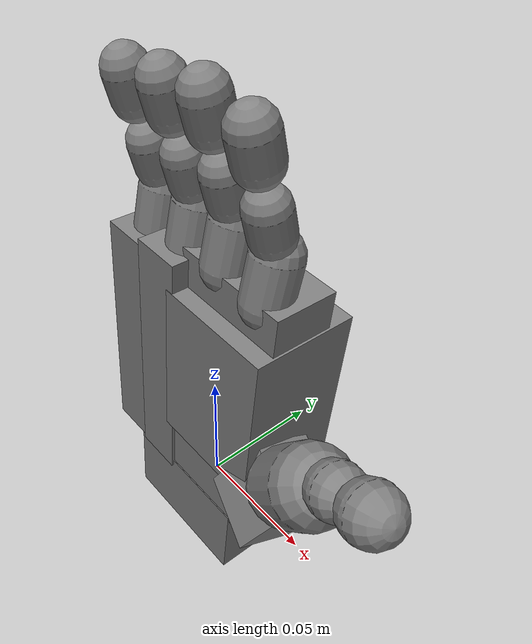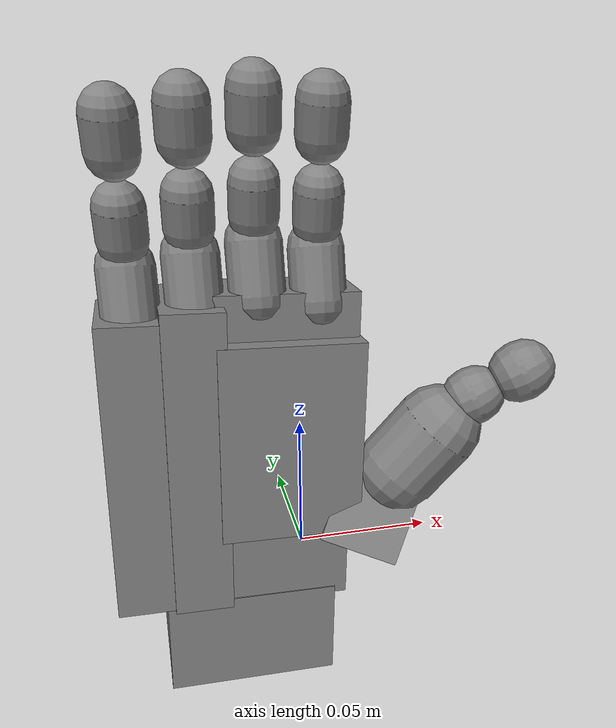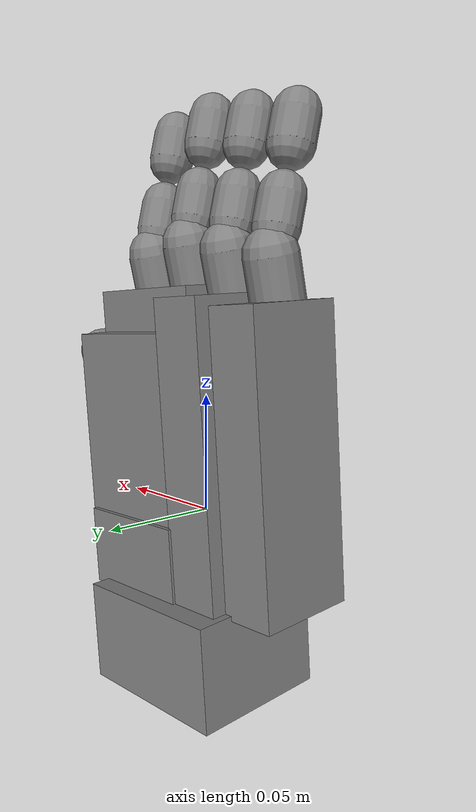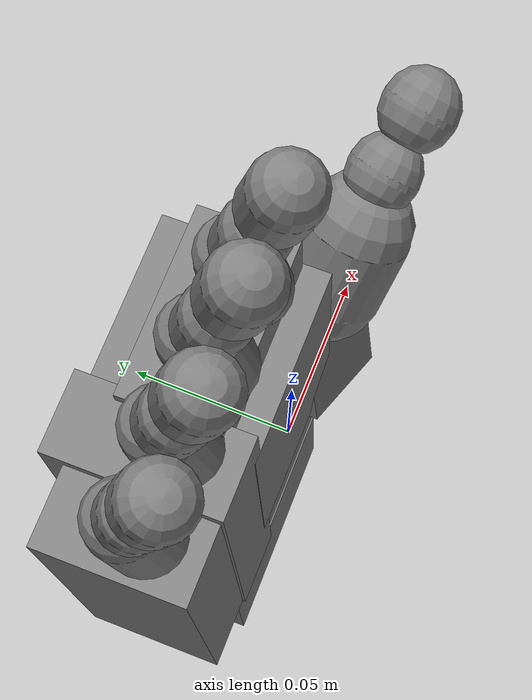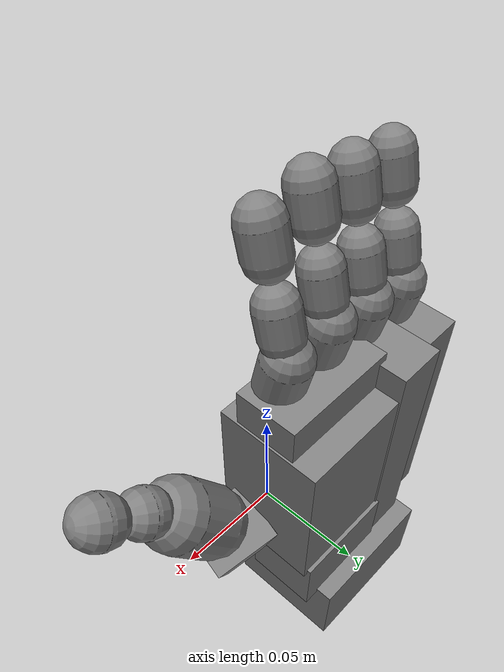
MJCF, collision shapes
<mujoco model="Lingxi_Hand_V2_Right_CanExactPose">
  <compiler angle="radian" meshdir="/home/ll/SRTP/Aero-Hand/handinformation/URDF/右/qbr/meshes/" />
  <option timestep="0.01" integrator="Euler" iterations="20" ls_iterations="20">
    <flag eulerdamp="disable" />
  </option>
  <custom>
    <numeric data="80" name="max_contact_points" />
    <numeric data="50" name="max_geom_pairs" />
  </custom>
  <asset>
    <material name="black" rgba="0.2 0.2 0.2 1" />
    <material name="gray" rgba="0.5 0.5 0.5 1" />
    <material name="white" rgba="0.529 0.549 0.549 1" />
    <material name="rubber" rgba="0.3 0.3 0.3 1" />
    <mesh name="v2_palm" file="v2_base_link.STL" />
    <mesh name="v2_thumb_base" file="link1.STL" />
    <mesh name="v2_thumb_mid" file="link2.STL" />
    <mesh name="v2_thumb_tip" file="link3.STL" />
    <mesh name="v2_index_proximal" file="link4.STL" />
    <mesh name="v2_index_distal" file="link5.STL" />
    <mesh name="v2_middle_proximal" file="link6.STL" />
    <mesh name="v2_middle_distal" file="link7.STL" />
    <mesh name="v2_ring_proximal" file="link8.STL" />
    <mesh name="v2_ring_distal" file="link9.STL" />
    <mesh name="v2_pinky_proximal" file="link10.STL" />
    <mesh name="v2_pinky_distal" file="link11.STL" />
  </asset>
  <default>
    <default class="v2_hand">
      <site group="4" />
      <default class="visual">
        <geom group="2" type="mesh" contype="0" conaffinity="0" density="0" material="white" />
      </default>
      <joint damping="0.02" armature="0.001559127" frictionloss="0.02" />
      <position kp="3.0" />
      <default class="mcp">
        <joint range="0 1.3963" damping="0.1" />
        <position ctrlrange="0 1.40" />
      </default>
      <default class="pip">
        <joint range="0 1.2915" damping="0.05" />
      </default>
      <default class="thumb_cmc">
        <joint range="0 1.3788" damping="0.1" />
        <position ctrlrange="0 1.38" />
      </default>
      <!-- 拇指 flex 代理遵循 handinformation 中的两段弯曲：
           被动段约 30°，主动段约 45°。 -->
      <default class="thumb_flex">
        <joint range="0 0.5236" damping="0.05" />
      </default>
      <default class="thumb_mcp">
        <joint range="0 0.7854" damping="0.05" />
        <position ctrlrange="0 0.79" />
      </default>
    </default>
  </default>
  <contact>
    <exclude body1="palm" body2="right_index_proximal" />
    <exclude body1="palm" body2="right_middle_proximal" />
    <exclude body1="palm" body2="right_ring_proximal" />
    <exclude body1="palm" body2="right_pinky_proximal" />
    <exclude body1="palm" body2="right_thumb_base" />
    <exclude body1="palm" body2="right_thumb_mid" />
    <exclude body1="palm" body2="right_ring_distal" />
    <exclude body1="palm" body2="right_pinky_distal" />
    <exclude body1="v2_mount" body2="right_index_proximal" />
    <exclude body1="v2_mount" body2="right_middle_proximal" />
    <exclude body1="v2_mount" body2="right_ring_proximal" />
    <exclude body1="v2_mount" body2="right_pinky_proximal" />
    <exclude body1="v2_mount" body2="right_thumb_base" />
    <exclude body1="right_index_proximal" body2="right_index_distal" />
    <exclude body1="right_middle_proximal" body2="right_middle_distal" />
    <exclude body1="right_ring_proximal" body2="right_ring_distal" />
    <exclude body1="right_pinky_proximal" body2="right_pinky_distal" />
    <exclude body1="right_thumb_base" body2="right_thumb_mid" />
    <exclude body1="right_thumb_mid" body2="right_thumb_tip" />
    <exclude body1="right_index_proximal" body2="right_middle_proximal" />
    <exclude body1="right_index_distal" body2="right_middle_distal" />
    <exclude body1="right_middle_proximal" body2="right_ring_proximal" />
    <exclude body1="right_middle_distal" body2="right_ring_distal" />
    <exclude body1="right_ring_proximal" body2="right_pinky_proximal" />
    <exclude body1="right_ring_distal" body2="right_pinky_distal" />
    <exclude body1="right_index_proximal" body2="right_middle_distal" />
    <exclude body1="right_middle_proximal" body2="right_ring_distal" />
    <exclude body1="right_ring_proximal" body2="right_pinky_distal" />
    <exclude body1="right_middle_proximal" body2="right_index_distal" />
    <exclude body1="right_ring_proximal" body2="right_middle_distal" />
    <exclude body1="right_pinky_proximal" body2="right_ring_distal" />
  </contact>
  <worldbody>
    <body name="v2_mount" pos="-0.020 0.020 -0.055" euler="1.5708 0 0" childclass="v2_hand">
      <body name="palm" pos="0 0 0">
        <geom type="mesh" mesh="v2_palm" class="visual" />
        <geom name="palm_capsule_000" type="box" size="0.019545 0.032818 0.027657" pos="-0.001294 0.013306 -0.002059" quat="-0.021394 -0.694705 0.718833 -0.014360" group="3" friction="1.25" solref="0.008 1.1" solimp="0.95 0.995 0.0005" />
        <geom name="palm_capsule_001" type="box" size="0.055995 0.012246 0.020313" pos="-0.037477 0.088524 0.002150" quat="-0.021394 -0.694705 0.718833 -0.014360" group="3" friction="1.25" solref="0.008 1.1" solimp="0.95 0.995 0.0005" />
        <geom name="palm_capsule_002" type="box" size="0.015020 0.023038 0.009075" pos="0.014322 0.045467 0.014280" quat="-0.021394 -0.694705 0.718833 -0.014360" group="3" friction="1.25" solref="0.008 1.1" solimp="0.95 0.995 0.0005" />
        <geom name="palm_capsule_003" type="box" size="0.058447 0.011058 0.023732" pos="-0.017454 0.089066 -0.000677" quat="-0.021394 -0.694705 0.718833 -0.014360" group="3" friction="1.25" solref="0.008 1.1" solimp="0.95 0.995 0.0005" />
        <geom name="palm_capsule_004" type="box" size="0.015590 0.024517 0.016455" pos="0.015471 0.045279 -0.007175" quat="-0.021394 -0.694705 0.718833 -0.014360" group="3" friction="1.25" solref="0.008 1.1" solimp="0.95 0.995 0.0005" />
        <geom name="palm_capsule_005" type="box" size="0.001643 0.008443 0.008259" pos="0.017799 0.006857 -0.019307" quat="-0.021394 -0.694705 0.718833 -0.014360" group="3" friction="1.25" solref="0.008 1.1" solimp="0.95 0.995 0.0005" />
        <geom name="palm_capsule_006" type="box" size="0.037733 0.026708 0.023460" pos="0.016879 0.095803 -0.000931" quat="-0.021394 -0.694705 0.718833 -0.014360" group="3" friction="1.25" solref="0.008 1.1" solimp="0.95 0.995 0.0005" />
        <geom name="palm_capsule_007" type="box" size="0.013627 0.026278 0.013850" pos="0.017772 0.136552 -0.001137" quat="-0.021394 -0.694705 0.718833 -0.014360" group="3" friction="1.25" solref="0.008 1.1" solimp="0.95 0.995 0.0005" />
        <site name="grasp_site" pos="0 0.085 -0.020" group="4" />
        <body name="right_index_proximal" pos="0.034276 0.1374 0.001">
          <inertial pos="-0.003657 0.0162 0.000274" mass="0.0686" diaginertia="7.49e-06 7.33e-06 2.82e-06" />
          <joint name="right_index_mcp" axis="1 0 0" class="mcp" />
          <geom type="mesh" mesh="v2_index_proximal" class="visual" />
          <geom name="right_index_proximal_capsule_000" type="capsule" group="3" friction="1.5" solref="0.005 1.0" solimp="0.97 0.999 0.0001" fromto="-0.003733 0.008071 0.003736 -0.003793 0.026509 -0.000839" size="0.010229" />
          <body name="right_index_distal" pos="0.00084336 0.031988 -0.0026473">
            <inertial pos="-0.00450 0.0246 0.00927" mass="0.0755" diaginertia="1.58e-05 1.57e-05 2.47e-06" />
            <joint name="right_index_pip" axis="1 0 0" class="pip" />
            <geom type="mesh" mesh="v2_index_distal" class="visual" />
            <geom name="right_index_distal_capsule_000" type="capsule" group="3" friction="1.5" solref="0.005 1.0" solimp="0.97 0.999 0.0001" fromto="-0.004533 0.003643 0.004505 -0.004547 0.015148 0.007211" size="0.008789" />
            <geom name="right_index_distal_capsule_001" type="capsule" group="3" friction="1.5" solref="0.005 1.0" solimp="0.97 0.999 0.0001" fromto="-0.004569 0.032374 0.011263 -0.004584 0.043669 0.013920" size="0.008894" />
            <site name="if_tip" pos="-0.004 0.052 0.005" group="4" />
            <site name="if_tip_t00" pos="-0.007 0.042 0.005" size="0.003" />
            <site name="if_tip_t01" pos="-0.005 0.042 0.005" size="0.003" />
            <site name="if_tip_t02" pos="-0.003 0.042 0.005" size="0.003" />
            <site name="if_tip_t03" pos="-0.001 0.042 0.005" size="0.003" />
            <site name="if_tip_t04" pos="-0.007 0.045 0.005" size="0.003" />
            <site name="if_tip_t05" pos="-0.005 0.045 0.005" size="0.003" />
            <site name="if_tip_t06" pos="-0.003 0.045 0.005" size="0.003" />
            <site name="if_tip_t07" pos="-0.001 0.045 0.005" size="0.003" />
            <site name="if_tip_t08" pos="-0.007 0.048 0.005" size="0.003" />
            <site name="if_tip_t09" pos="-0.005 0.048 0.005" size="0.003" />
            <site name="if_tip_t10" pos="-0.003 0.048 0.005" size="0.003" />
            <site name="if_tip_t11" pos="-0.001 0.048 0.005" size="0.003" />
            <site name="if_tip_t12" pos="-0.007 0.051 0.005" size="0.003" />
            <site name="if_tip_t13" pos="-0.005 0.051 0.005" size="0.003" />
            <site name="if_tip_t14" pos="-0.003 0.051 0.005" size="0.003" />
            <site name="if_tip_t15" pos="-0.001 0.051 0.005" size="0.003" />
          </body>
        </body>
        <body name="right_middle_proximal" pos="0.012276 0.14055 0.001">
          <inertial pos="-0.003657 0.0162 0.000274" mass="0.0686" diaginertia="7.49e-06 7.33e-06 2.82e-06" />
          <joint name="right_middle_mcp" axis="1 0 0" class="mcp" />
          <geom type="mesh" mesh="v2_middle_proximal" class="visual" />
          <geom name="right_middle_proximal_capsule_000" type="capsule" group="3" friction="1.5" solref="0.005 1.0" solimp="0.97 0.999 0.0001" fromto="-0.003733 0.008071 0.003736 -0.003793 0.026509 -0.000839" size="0.010229" />
          <body name="right_middle_distal" pos="0 0.02968 -0.0024563">
            <inertial pos="-0.00366 0.0269 0.00908" mass="0.0755" diaginertia="1.58e-05 1.57e-05 2.47e-06" />
            <joint name="right_middle_pip" axis="1 0 0" class="pip" />
            <geom type="mesh" mesh="v2_middle_distal" class="visual" />
            <geom name="right_middle_distal_capsule_000" type="capsule" group="3" friction="1.5" solref="0.005 1.0" solimp="0.97 0.999 0.0001" fromto="-0.003689 0.005951 0.004314 -0.003704 0.017455 0.007020" size="0.008789" />
            <geom name="right_middle_distal_capsule_001" type="capsule" group="3" friction="1.5" solref="0.005 1.0" solimp="0.97 0.999 0.0001" fromto="-0.003726 0.034682 0.011072 -0.003740 0.045977 0.013729" size="0.008894" />
            <site name="mf_tip" pos="-0.004 0.052 0.005" group="4" />
            <site name="mf_tip_t00" pos="-0.007 0.042 0.005" size="0.003" />
            <site name="mf_tip_t01" pos="-0.005 0.042 0.005" size="0.003" />
            <site name="mf_tip_t02" pos="-0.003 0.042 0.005" size="0.003" />
            <site name="mf_tip_t03" pos="-0.001 0.042 0.005" size="0.003" />
            <site name="mf_tip_t04" pos="-0.007 0.045 0.005" size="0.003" />
            <site name="mf_tip_t05" pos="-0.005 0.045 0.005" size="0.003" />
            <site name="mf_tip_t06" pos="-0.003 0.045 0.005" size="0.003" />
            <site name="mf_tip_t07" pos="-0.001 0.045 0.005" size="0.003" />
            <site name="mf_tip_t08" pos="-0.007 0.048 0.005" size="0.003" />
            <site name="mf_tip_t09" pos="-0.005 0.048 0.005" size="0.003" />
            <site name="mf_tip_t10" pos="-0.003 0.048 0.005" size="0.003" />
            <site name="mf_tip_t11" pos="-0.001 0.048 0.005" size="0.003" />
            <site name="mf_tip_t12" pos="-0.007 0.051 0.005" size="0.003" />
            <site name="mf_tip_t13" pos="-0.005 0.051 0.005" size="0.003" />
            <site name="mf_tip_t14" pos="-0.003 0.051 0.005" size="0.003" />
            <site name="mf_tip_t15" pos="-0.001 0.051 0.005" size="0.003" />
          </body>
        </body>
        <body name="right_ring_proximal" pos="-0.009724 0.1374 0.001">
          <inertial pos="-0.003657 0.0162 0.000274" mass="0.0686" diaginertia="7.49e-06 7.33e-06 2.82e-06" />
          <joint name="right_ring_mcp" axis="1 0 0" class="mcp" />
          <geom type="mesh" mesh="v2_ring_proximal" class="visual" />
          <geom name="right_ring_proximal_capsule_000" type="capsule" group="3" friction="1.5" solref="0.005 1.0" solimp="0.97 0.999 0.0001" fromto="-0.003733 0.008071 0.003736 -0.003793 0.026509 -0.000839" size="0.010229" />
          <body name="right_ring_distal" pos="0 0.02968 -0.0024563">
            <inertial pos="-0.00366 0.0269 0.00908" mass="0.0755" diaginertia="1.58e-05 1.57e-05 2.47e-06" />
            <joint name="right_ring_pip" axis="1 0 0" class="pip" />
            <geom type="mesh" mesh="v2_ring_distal" class="visual" />
            <geom name="right_ring_distal_capsule_000" type="capsule" group="3" friction="1.5" solref="0.005 1.0" solimp="0.97 0.999 0.0001" fromto="-0.003689 0.005951 0.004314 -0.003704 0.017455 0.007020" size="0.008789" />
            <geom name="right_ring_distal_capsule_001" type="capsule" group="3" friction="1.5" solref="0.005 1.0" solimp="0.97 0.999 0.0001" fromto="-0.003726 0.034682 0.011072 -0.003740 0.045977 0.013729" size="0.008894" />
            <site name="rf_tip" pos="-0.004 0.052 0.005" group="4" />
            <site name="rf_tip_t00" pos="-0.007 0.042 0.005" size="0.003" />
            <site name="rf_tip_t01" pos="-0.005 0.042 0.005" size="0.003" />
            <site name="rf_tip_t02" pos="-0.003 0.042 0.005" size="0.003" />
            <site name="rf_tip_t03" pos="-0.001 0.042 0.005" size="0.003" />
            <site name="rf_tip_t04" pos="-0.007 0.045 0.005" size="0.003" />
            <site name="rf_tip_t05" pos="-0.005 0.045 0.005" size="0.003" />
            <site name="rf_tip_t06" pos="-0.003 0.045 0.005" size="0.003" />
            <site name="rf_tip_t07" pos="-0.001 0.045 0.005" size="0.003" />
            <site name="rf_tip_t08" pos="-0.007 0.048 0.005" size="0.003" />
            <site name="rf_tip_t09" pos="-0.005 0.048 0.005" size="0.003" />
            <site name="rf_tip_t10" pos="-0.003 0.048 0.005" size="0.003" />
            <site name="rf_tip_t11" pos="-0.001 0.048 0.005" size="0.003" />
            <site name="rf_tip_t12" pos="-0.007 0.051 0.005" size="0.003" />
            <site name="rf_tip_t13" pos="-0.005 0.051 0.005" size="0.003" />
            <site name="rf_tip_t14" pos="-0.003 0.051 0.005" size="0.003" />
            <site name="rf_tip_t15" pos="-0.001 0.051 0.005" size="0.003" />
          </body>
        </body>
        <body name="right_pinky_proximal" pos="-0.031724 0.13417 0.001">
          <inertial pos="-0.003657 0.0162 0.000274" mass="0.0686" diaginertia="7.49e-06 7.33e-06 2.82e-06" />
          <joint name="right_pinky_mcp" axis="1 0 0" class="mcp" />
          <geom type="mesh" mesh="v2_pinky_proximal" class="visual" />
          <geom name="right_pinky_proximal_capsule_000" type="capsule" group="3" friction="1.5" solref="0.005 1.0" solimp="0.97 0.999 0.0001" fromto="-0.003733 0.008071 0.003736 -0.003793 0.026509 -0.000839" size="0.010229" />
          <body name="right_pinky_distal" pos="0.00084336 0.031988 -0.0026473">
            <inertial pos="-0.00450 0.0246 0.00927" mass="0.0755" diaginertia="1.58e-05 1.57e-05 2.47e-06" />
            <joint name="right_pinky_pip" axis="1 0 0" class="pip" />
            <geom type="mesh" mesh="v2_pinky_distal" class="visual" />
            <geom name="right_pinky_distal_capsule_000" type="capsule" group="3" friction="1.5" solref="0.005 1.0" solimp="0.97 0.999 0.0001" fromto="-0.004533 0.003643 0.004505 -0.004547 0.015148 0.007211" size="0.008789" />
            <geom name="right_pinky_distal_capsule_001" type="capsule" group="3" friction="1.5" solref="0.005 1.0" solimp="0.97 0.999 0.0001" fromto="-0.004569 0.032374 0.011263 -0.004584 0.043669 0.013920" size="0.008894" />
            <site name="pf_tip" pos="-0.004 0.052 0.005" group="4" />
            <site name="pf_tip_t00" pos="-0.007 0.042 0.005" size="0.003" />
            <site name="pf_tip_t01" pos="-0.005 0.042 0.005" size="0.003" />
            <site name="pf_tip_t02" pos="-0.003 0.042 0.005" size="0.003" />
            <site name="pf_tip_t03" pos="-0.001 0.042 0.005" size="0.003" />
            <site name="pf_tip_t04" pos="-0.007 0.045 0.005" size="0.003" />
            <site name="pf_tip_t05" pos="-0.005 0.045 0.005" size="0.003" />
            <site name="pf_tip_t06" pos="-0.003 0.045 0.005" size="0.003" />
            <site name="pf_tip_t07" pos="-0.001 0.045 0.005" size="0.003" />
            <site name="pf_tip_t08" pos="-0.007 0.048 0.005" size="0.003" />
            <site name="pf_tip_t09" pos="-0.005 0.048 0.005" size="0.003" />
            <site name="pf_tip_t10" pos="-0.003 0.048 0.005" size="0.003" />
            <site name="pf_tip_t11" pos="-0.001 0.048 0.005" size="0.003" />
            <site name="pf_tip_t12" pos="-0.007 0.051 0.005" size="0.003" />
            <site name="pf_tip_t13" pos="-0.005 0.051 0.005" size="0.003" />
            <site name="pf_tip_t14" pos="-0.003 0.051 0.005" size="0.003" />
            <site name="pf_tip_t15" pos="-0.001 0.051 0.005" size="0.003" />
          </body>
        </body>
        <body name="right_thumb_base" pos="0.028693 0.069894 0.010325" quat="0.999048 0 0 0.043619">
          <inertial pos="0.013775 -0.009814 0.002084" mass="0.08488" diaginertia="1.03e-05 9.49e-06 5.67e-06" />
          <joint name="right_thumb_cmc_abd" axis="0 -1 0" class="thumb_cmc" />
          <geom type="mesh" mesh="v2_thumb_base" class="visual" />
          <geom name="right_thumb_base_capsule_000" type="box" size="0.015325 0.013443 0.017225" pos="0.019292 -0.009593 0.002956" quat="0.237188 0.108156 0.803420 0.535313" group="3" friction="1.5" solref="0.005 1.0" solimp="0.97 0.999 0.0001" />
          <geom name="right_thumb_base_capsule_001" type="box" size="0.008344 0.008646 0.008403" pos="-0.002984 -0.008688 -0.002984" quat="0.237188 0.108156 0.803420 0.535313" group="3" friction="1.5" solref="0.005 1.0" solimp="0.97 0.999 0.0001" />
          <body name="right_thumb_mid" pos="0.02679 -0.0045 0.0045976" quat="0.641137 -0.027549 -0.766225 -0.032924">
            <inertial pos="0 0.01832 -0.01287" mass="0.18907" diaginertia="4.62e-05 4.25e-05 1.60e-05" />
            <joint name="right_thumb_cmc_flex" axis="1 0 0" class="thumb_flex" />
            <geom type="mesh" mesh="v2_thumb_mid" class="visual" />
            <geom name="right_thumb_mid_capsule_000" type="capsule" group="3" friction="1.5" solref="0.005 1.0" solimp="0.97 0.999 0.0001" fromto="0.000259 0.029240 -0.018406 0.000155 0.011437 -0.004140" size="0.016560" />
            <body name="right_thumb_tip" pos="0.0055478 0.0413 -0.024172">
              <inertial pos="-0.005551 0.005391 -0.014448" mass="0.07660" diaginertia="8.30e-06 8.00e-06 4.06e-06" />
              <joint name="right_thumb_mcp" axis="1 0 0" class="thumb_mcp" />
              <geom type="mesh" mesh="v2_thumb_tip" class="visual" />
              <geom name="right_thumb_tip_capsule_000" type="capsule" group="3" friction="1.5" solref="0.005 1.0" solimp="0.97 0.999 0.0001" fromto="-0.005496 0.010877 -0.025065 -0.005505 0.009894 -0.023324" size="0.011363" />
              <geom name="right_thumb_tip_capsule_001" type="capsule" group="3" friction="1.5" solref="0.005 1.0" solimp="0.97 0.999 0.0001" fromto="-0.005586 0.001141 -0.007809 -0.005595 0.000159 -0.006067" size="0.010936" />
              <site name="th_tip" pos="-0.006 0.021 -0.020" group="4" />
              <site name="th_tip_t00" pos="-0.010 0.008 -0.020" size="0.003" />
              <site name="th_tip_t01" pos="-0.007 0.008 -0.020" size="0.003" />
              <site name="th_tip_t02" pos="-0.004 0.008 -0.020" size="0.003" />
              <site name="th_tip_t03" pos="-0.001 0.008 -0.020" size="0.003" />
              <site name="th_tip_t04" pos="-0.010 0.012 -0.020" size="0.003" />
              <site name="th_tip_t05" pos="-0.007 0.012 -0.020" size="0.003" />
              <site name="th_tip_t06" pos="-0.004 0.012 -0.020" size="0.003" />
              <site name="th_tip_t07" pos="-0.001 0.012 -0.020" size="0.003" />
              <site name="th_tip_t08" pos="-0.010 0.016 -0.020" size="0.003" />
              <site name="th_tip_t09" pos="-0.007 0.016 -0.020" size="0.003" />
              <site name="th_tip_t10" pos="-0.004 0.016 -0.020" size="0.003" />
              <site name="th_tip_t11" pos="-0.001 0.016 -0.020" size="0.003" />
              <site name="th_tip_t12" pos="-0.010 0.020 -0.020" size="0.003" />
              <site name="th_tip_t13" pos="-0.007 0.020 -0.020" size="0.003" />
              <site name="th_tip_t14" pos="-0.004 0.020 -0.020" size="0.003" />
              <site name="th_tip_t15" pos="-0.001 0.020 -0.020" size="0.003" />
            </body>
          </body>
        </body>
      </body>
    </body>
  </worldbody>
  <actuator>
    <position name="hw_thumb_rot" joint="right_thumb_cmc_abd" class="thumb_cmc" kp="5" />
    <position name="hw_thumb_flex" joint="right_thumb_mcp" class="thumb_mcp" kp="3" />
    <position name="hw_index" joint="right_index_mcp" class="mcp" kp="3" />
    <position name="hw_middle" joint="right_middle_mcp" class="mcp" kp="3" />
    <position name="hw_ring" joint="right_ring_mcp" class="mcp" kp="3" />
    <position name="hw_pinky" joint="right_pinky_mcp" class="mcp" kp="3" />
  </actuator>
  <sensor>
    <jointpos name="hw_pos_thumb_rot" joint="right_thumb_cmc_abd" />
    <jointpos name="hw_pos_thumb_flex" joint="right_thumb_mcp" />
    <jointpos name="hw_pos_index" joint="right_index_mcp" />
    <jointpos name="hw_pos_middle" joint="right_middle_mcp" />
    <jointpos name="hw_pos_ring" joint="right_ring_mcp" />
    <jointpos name="hw_pos_pinky" joint="right_pinky_mcp" />
    <touch name="hw_tip_frc_thumb_00" site="th_tip_t00" />
    <touch name="hw_tip_frc_thumb_01" site="th_tip_t01" />
    <touch name="hw_tip_frc_thumb_02" site="th_tip_t02" />
    <touch name="hw_tip_frc_thumb_03" site="th_tip_t03" />
    <touch name="hw_tip_frc_thumb_04" site="th_tip_t04" />
    <touch name="hw_tip_frc_thumb_05" site="th_tip_t05" />
    <touch name="hw_tip_frc_thumb_06" site="th_tip_t06" />
    <touch name="hw_tip_frc_thumb_07" site="th_tip_t07" />
    <touch name="hw_tip_frc_thumb_08" site="th_tip_t08" />
    <touch name="hw_tip_frc_thumb_09" site="th_tip_t09" />
    <touch name="hw_tip_frc_thumb_10" site="th_tip_t10" />
    <touch name="hw_tip_frc_thumb_11" site="th_tip_t11" />
    <touch name="hw_tip_frc_thumb_12" site="th_tip_t12" />
    <touch name="hw_tip_frc_thumb_13" site="th_tip_t13" />
    <touch name="hw_tip_frc_thumb_14" site="th_tip_t14" />
    <touch name="hw_tip_frc_thumb_15" site="th_tip_t15" />
    <touch name="hw_tip_frc_index_00" site="if_tip_t00" />
    <touch name="hw_tip_frc_index_01" site="if_tip_t01" />
    <touch name="hw_tip_frc_index_02" site="if_tip_t02" />
    <touch name="hw_tip_frc_index_03" site="if_tip_t03" />
    <touch name="hw_tip_frc_index_04" site="if_tip_t04" />
    <touch name="hw_tip_frc_index_05" site="if_tip_t05" />
    <touch name="hw_tip_frc_index_06" site="if_tip_t06" />
    <touch name="hw_tip_frc_index_07" site="if_tip_t07" />
    <touch name="hw_tip_frc_index_08" site="if_tip_t08" />
    <touch name="hw_tip_frc_index_09" site="if_tip_t09" />
    <touch name="hw_tip_frc_index_10" site="if_tip_t10" />
    <touch name="hw_tip_frc_index_11" site="if_tip_t11" />
    <touch name="hw_tip_frc_index_12" site="if_tip_t12" />
    <touch name="hw_tip_frc_index_13" site="if_tip_t13" />
    <touch name="hw_tip_frc_index_14" site="if_tip_t14" />
    <touch name="hw_tip_frc_index_15" site="if_tip_t15" />
    <touch name="hw_tip_frc_middle_00" site="mf_tip_t00" />
    <touch name="hw_tip_frc_middle_01" site="mf_tip_t01" />
    <touch name="hw_tip_frc_middle_02" site="mf_tip_t02" />
    <touch name="hw_tip_frc_middle_03" site="mf_tip_t03" />
    <touch name="hw_tip_frc_middle_04" site="mf_tip_t04" />
    <touch name="hw_tip_frc_middle_05" site="mf_tip_t05" />
    <touch name="hw_tip_frc_middle_06" site="mf_tip_t06" />
    <touch name="hw_tip_frc_middle_07" site="mf_tip_t07" />
    <touch name="hw_tip_frc_middle_08" site="mf_tip_t08" />
    <touch name="hw_tip_frc_middle_09" site="mf_tip_t09" />
    <touch name="hw_tip_frc_middle_10" site="mf_tip_t10" />
    <touch name="hw_tip_frc_middle_11" site="mf_tip_t11" />
    <touch name="hw_tip_frc_middle_12" site="mf_tip_t12" />
    <touch name="hw_tip_frc_middle_13" site="mf_tip_t13" />
    <touch name="hw_tip_frc_middle_14" site="mf_tip_t14" />
    <touch name="hw_tip_frc_middle_15" site="mf_tip_t15" />
    <touch name="hw_tip_frc_ring_00" site="rf_tip_t00" />
    <touch name="hw_tip_frc_ring_01" site="rf_tip_t01" />
    <touch name="hw_tip_frc_ring_02" site="rf_tip_t02" />
    <touch name="hw_tip_frc_ring_03" site="rf_tip_t03" />
    <touch name="hw_tip_frc_ring_04" site="rf_tip_t04" />
    <touch name="hw_tip_frc_ring_05" site="rf_tip_t05" />
    <touch name="hw_tip_frc_ring_06" site="rf_tip_t06" />
    <touch name="hw_tip_frc_ring_07" site="rf_tip_t07" />
    <touch name="hw_tip_frc_ring_08" site="rf_tip_t08" />
    <touch name="hw_tip_frc_ring_09" site="rf_tip_t09" />
    <touch name="hw_tip_frc_ring_10" site="rf_tip_t10" />
    <touch name="hw_tip_frc_ring_11" site="rf_tip_t11" />
    <touch name="hw_tip_frc_ring_12" site="rf_tip_t12" />
    <touch name="hw_tip_frc_ring_13" site="rf_tip_t13" />
    <touch name="hw_tip_frc_ring_14" site="rf_tip_t14" />
    <touch name="hw_tip_frc_ring_15" site="rf_tip_t15" />
    <touch name="hw_tip_frc_pinky_00" site="pf_tip_t00" />
    <touch name="hw_tip_frc_pinky_01" site="pf_tip_t01" />
    <touch name="hw_tip_frc_pinky_02" site="pf_tip_t02" />
    <touch name="hw_tip_frc_pinky_03" site="pf_tip_t03" />
    <touch name="hw_tip_frc_pinky_04" site="pf_tip_t04" />
    <touch name="hw_tip_frc_pinky_05" site="pf_tip_t05" />
    <touch name="hw_tip_frc_pinky_06" site="pf_tip_t06" />
    <touch name="hw_tip_frc_pinky_07" site="pf_tip_t07" />
    <touch name="hw_tip_frc_pinky_08" site="pf_tip_t08" />
    <touch name="hw_tip_frc_pinky_09" site="pf_tip_t09" />
    <touch name="hw_tip_frc_pinky_10" site="pf_tip_t10" />
    <touch name="hw_tip_frc_pinky_11" site="pf_tip_t11" />
    <touch name="hw_tip_frc_pinky_12" site="pf_tip_t12" />
    <touch name="hw_tip_frc_pinky_13" site="pf_tip_t13" />
    <touch name="hw_tip_frc_pinky_14" site="pf_tip_t14" />
    <touch name="hw_tip_frc_pinky_15" site="pf_tip_t15" />
  </sensor>
  <equality>
    <joint joint1="right_index_pip" joint2="right_index_mcp" polycoef="0 0.925 0 0 0" solref="0.005 1" solimp="0.95 0.99 0.001" />
    <joint joint1="right_middle_pip" joint2="right_middle_mcp" polycoef="0 0.925 0 0 0" solref="0.005 1" solimp="0.95 0.99 0.001" />
    <joint joint1="right_ring_pip" joint2="right_ring_mcp" polycoef="0 0.925 0 0 0" solref="0.005 1" solimp="0.95 0.99 0.001" />
    <joint joint1="right_pinky_pip" joint2="right_pinky_mcp" polycoef="0 0.925 0 0 0" solref="0.005 1" solimp="0.95 0.99 0.001" />
    <!-- handinformation / qbr URDF / HW6 tendon model 都指向：
         thumb_flex 通道主要驱动 thumb_mcp，cmc_flex 是联动的被动段。
         这里用 30° / 45° ≈ 0.667 的线性代理，替代旧的 abd→flex 训练近似。 -->
    <joint joint1="right_thumb_cmc_flex" joint2="right_thumb_mcp" polycoef="0 0.6666667 0 0 0" solref="0.005 1" solimp="0.95 0.99 0.001" />
  </equality>
</mujoco>
